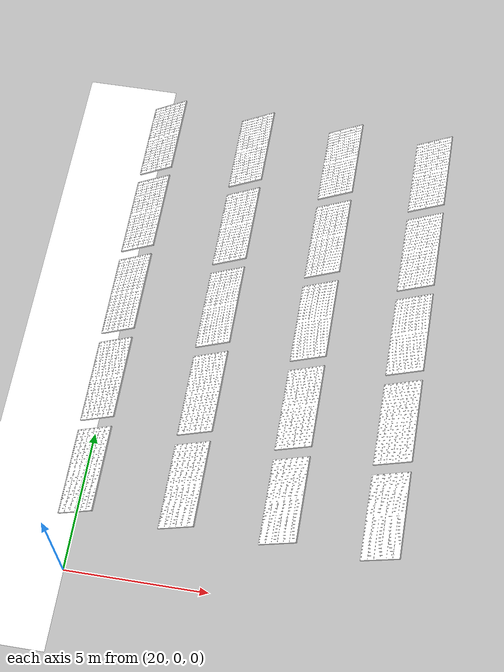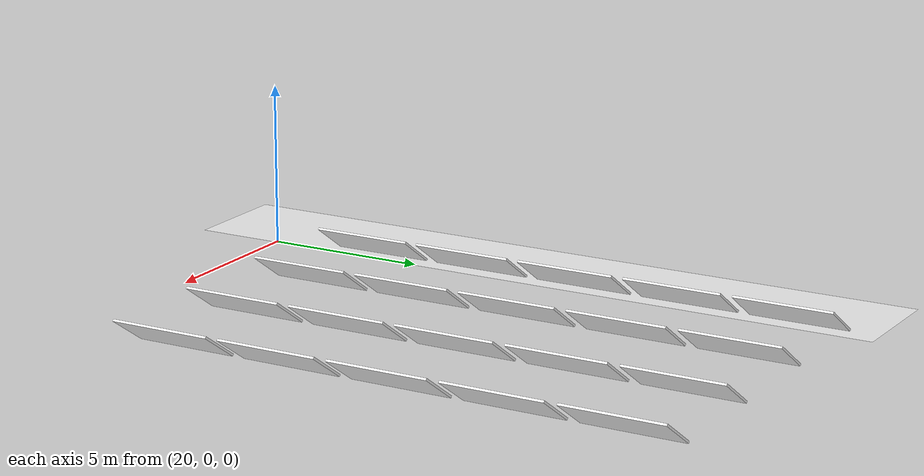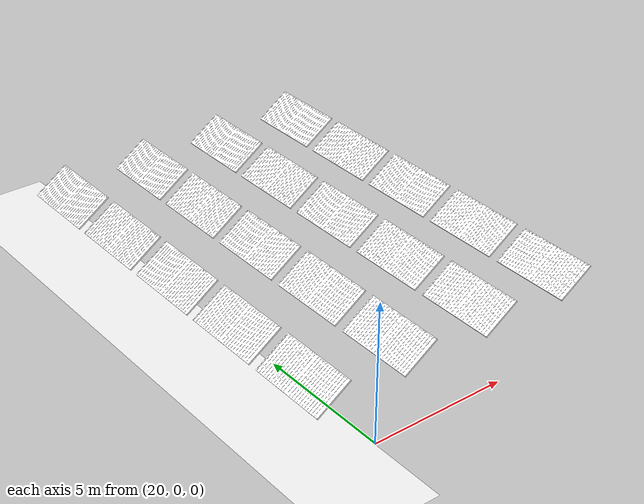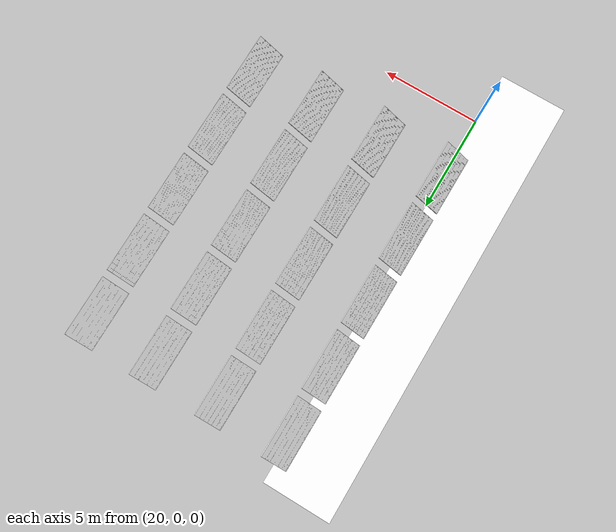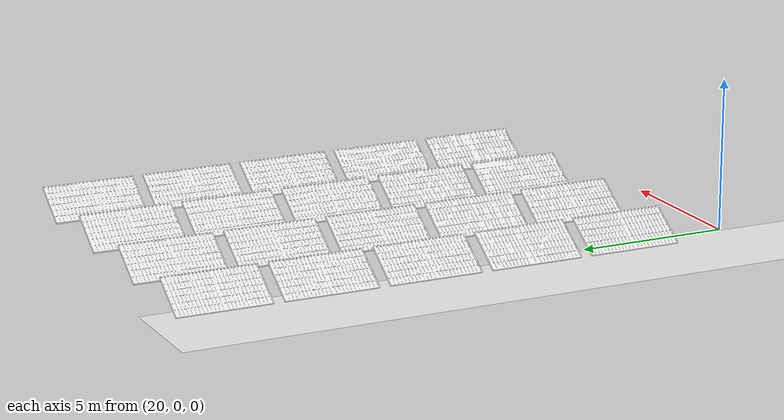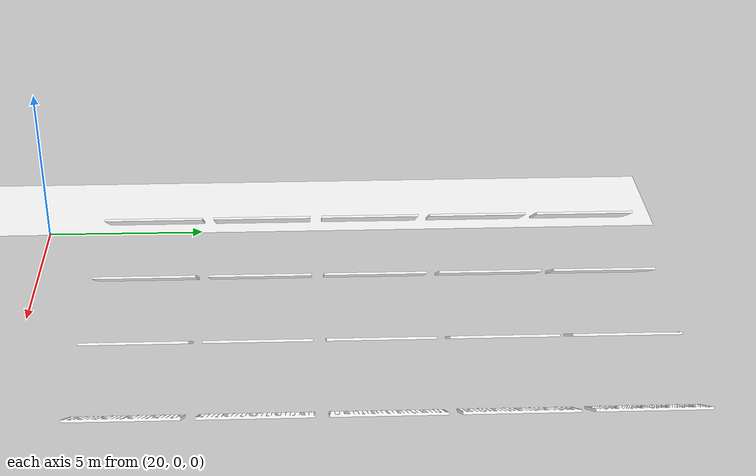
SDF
<?xml version="1.0"?>

<sdf version="1.6">
    <world name="solar_field">
        <physics name="4ms" type="ignored">
            <max_step_size>0.004</max_step_size>
            <real_time_factor>1.0</real_time_factor>
        </physics>
        <plugin
            filename="gz-sim-physics-system"
            name="gz::sim::systems::Physics">
        </plugin>
        <plugin
            filename="gz-sim-scene-broadcaster-system"
            name="gz::sim::systems::SceneBroadcaster">
        </plugin>
        <plugin
            filename="gz-sim-user-commands-system"
            name="gz::sim::systems::UserCommands">
        </plugin>
        <plugin
            filename="gz-sim-sensors-system"
            name="gz::sim::systems::Sensors">
            <render_engine>ogre2</render_engine>
        </plugin>

        <light type="directional"
            name="sun">
            <cast_shadows>true</cast_shadows>
            <pose>0 0 10 0 0 0</pose>
            <diffuse>0.8 0.8 0.8 1</diffuse>
            <specular>0.2 0.2 0.2 1</specular>
            <attenuation>
                <range>1000</range>
                <constant>0.9</constant>
                <linear>0.01</linear>
                <quadratic>0.001</quadratic>
            </attenuation>
            <direction>-0.5 0.1 -0.9</direction>
        </light>

        <scene>
            <sky>
                <clouds>
                    <speed>2</speed>
                </clouds>
            </sky>
        </scene>

        <include>
            <uri>model://grass_patch</uri>
        </include>
        <include>
            <uri>model://solar_panel</uri>
            <name>panel0</name>
            <pose>20 3.5 0.45 0 0.6 3.14</pose>
        </include>
        <include>
            <uri>model://solar_panel</uri>
            <name>panel1</name>
            <pose>20 7.0 0.45 0 0.6 3.14</pose>
        </include>
        <include>
            <uri>model://solar_panel</uri>
            <name>panel2</name>
            <pose>20 10.5 0.45 0 0.6 3.14</pose>
        </include>
        <include>
            <uri>model://solar_panel</uri>
            <name>panel3</name>
            <pose>20 14.0 0.45 0 0.6 3.14</pose>
        </include>
        <include>
            <uri>model://solar_panel</uri>
            <name>panel4</name>
            <pose>20 17.5 0.45 0 0.6 3.14</pose>
        </include>
        <include>
            <uri>model://solar_panel</uri>
            <name>panel5</name>
            <pose>23.5 3.5 0.45 0 0.6 3.14</pose>
        </include>
        <include>
            <uri>model://solar_panel</uri>
            <name>panel6</name>
            <pose>23.5 7.0 0.45 0 0.6 3.14</pose>
        </include>
        <include>
            <uri>model://solar_panel</uri>
            <name>panel7</name>
            <pose>23.5 10.5 0.45 0 0.6 3.14</pose>
        </include>
        <include>
            <uri>model://solar_panel</uri>
            <name>panel8</name>
            <pose>23.5 14.0 0.45 0 0.6 3.14</pose>
        </include>
        <include>
            <uri>model://solar_panel</uri>
            <name>panel9</name>
            <pose>23.5 17.5 0.45 0 0.6 3.14</pose>
        </include>
        <include>
            <uri>model://solar_panel</uri>
            <name>panel10</name>
            <pose>27.0 3.5 0.45 0 0.6 3.14</pose>
        </include>
        <include>
            <uri>model://solar_panel</uri>
            <name>panel11</name>
            <pose>27.0 7.0 0.45 0 0.6 3.14</pose>
        </include>
        <include>
            <uri>model://solar_panel</uri>
            <name>panel12</name>
            <pose>27.0 10.5 0.45 0 0.6 3.14</pose>
        </include>
        <include>
            <uri>model://solar_panel</uri>
            <name>panel13</name>
            <pose>27.0 14.0 0.45 0 0.6 3.14</pose>
        </include>
        <include>
            <uri>model://solar_panel</uri>
            <name>panel14</name>
            <pose>27.0 17.5 0.45 0 0.6 3.14</pose>
        </include>
        <include>
            <uri>model://solar_panel</uri>
            <name>panel15</name>
            <pose>30.5 3.5 0.45 0 0.6 3.14</pose>
        </include>
        <include>
            <uri>model://solar_panel</uri>
            <name>panel16</name>
            <pose>30.5 7.0 0.45 0 0.6 3.14</pose>
        </include>
        <include>
            <uri>model://solar_panel</uri>
            <name>panel17</name>
            <pose>30.5 10.5 0.45 0 0.6 3.14</pose>
        </include>
        <include>
            <uri>model://solar_panel</uri>
            <name>panel18</name>
            <pose>30.5 14.0 0.45 0 0.6 3.14</pose>
        </include>
        <include>
            <uri>model://solar_panel</uri>
            <name>panel19</name>
            <pose>30.5 17.5 0.45 0 0.6 3.14</pose>
        </include>

    </world>
</sdf>

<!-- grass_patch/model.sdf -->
<sdf version="1.9">
  <model name="grass_patch">
    <static>true</static>
    <link name="link">
      <visual name="visual">
        <cast_shadows>false</cast_shadows>
        <geometry><plane><normal>0 0 1</normal><size>40 40</size></plane></geometry>
        <material>
          <diffuse>1.0 1.0 1.0</diffuse>
          <specular>0.1 0.1 0.1</specular>
          <pbr>
            <metal>
              <albedo_map>model://grass_field/materials/textures/grass_dry.png</albedo_map>
              <normal_map>model://grass_field/materials/textures/grass_dry.png</normal_map>
            </metal>
          </pbr>
        </material>
      </visual>
    </link>
  </model>
</sdf>

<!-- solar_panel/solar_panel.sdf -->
<sdf version='1.8'>
  <model name="solar_panel">
  <static>true</static>
    <link name="testlink">
    <static>true</static>
      <visual name="S_LP">
        <geometry>
          <mesh>
            <uri>solar_panel.dae</uri>
            <scale>0.04 0.04 0.04</scale>
            <submesh>
              <name>S_LP</name>
            </submesh>
          </mesh>
        </geometry>
        <material>
          <diffuse>1.0 1.0 1.0 1.0</diffuse>
          <specular>0.0 0.0 0.0 1.0</specular>
          <pbr>
            <metal>
              <albedo_map>meshes/wire_154215229_baseColor.png</albedo_map>
            </metal>
          </pbr>
        </material>
      </visual>
      <collision name="collision">
        <geometry>
          <mesh>
            <uri>solar_panel.dae</uri>
            <scale>0.04 0.04 0.04</scale>
          </mesh>
        </geometry>
        <surface/>
        <contact/>
        <collide_bitmask>0x01</collide_bitmask>
      </collision>
    </link>
        <include>
            <name>gps</name>
            <uri>model://gps</uri>
            <plugin
                filename="ignition-gazebo-odometry-publisher-system"
                name="ignition::gazebo::systems::OdometryPublisher">
                <dimensions>3</dimensions>
                <odom_publish_frequency>100</odom_publish_frequency>
            </plugin>
        </include>
  </model>
</sdf>

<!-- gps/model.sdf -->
<sdf version="1.6">
  <model name="gps">
    <link name="link">
      <pose>0 0 0 0 0 0</pose>
      <inertial>
        <pose>0 0 0 0 0 0</pose>
        <mass>0.015</mass>
        <inertia>
          <ixx>1e-05</ixx>
          <ixy>0</ixy>
          <ixz>0</ixz>
          <iyy>1e-05</iyy>
          <iyz>0</iyz>
          <izz>1e-05</izz>
        </inertia>
      </inertial>
      <visual name="visual">
        <geometry>
          <cylinder>
            <radius>0.01</radius>
            <length>0.002</length>
          </cylinder>
        </geometry>
        <material>
          <script>
            <name>Gazebo/Black</name>
            <uri>file://usr/share/gz/gz-sim8/media/gazebo.material</uri>
          </script>
        </material>
      </visual>
      <sensor name="gps" type="gps">
        <pose>0 0 0 0 0 0</pose>
        <update_rate>5.0</update_rate>
        <always_on>true</always_on>
        <visualize>false</visualize>
        <!-- GpsSensor noise currently not used -->
        <plugin name="gps_plugin" filename="libgazebo_gps_plugin.so">
          <robotNamespace></robotNamespace>
          <gpsNoise>true</gpsNoise>
          <gpsXYRandomWalk>2.0</gpsXYRandomWalk>
          <gpsZRandomWalk>4.0</gpsZRandomWalk>
          <gpsXYNoiseDensity>2.0e-4</gpsXYNoiseDensity>
          <gpsZNoiseDensity>4.0e-4</gpsZNoiseDensity>
          <gpsVXYNoiseDensity>0.2</gpsVXYNoiseDensity>
          <gpsVZNoiseDensity>0.4</gpsVZNoiseDensity>
        </plugin>
      </sensor>
    </link>
  </model>
</sdf>
